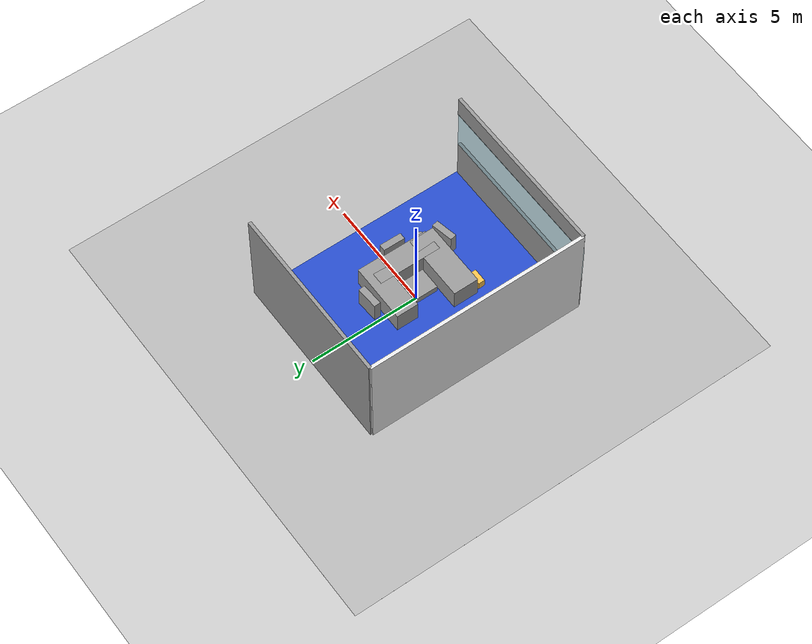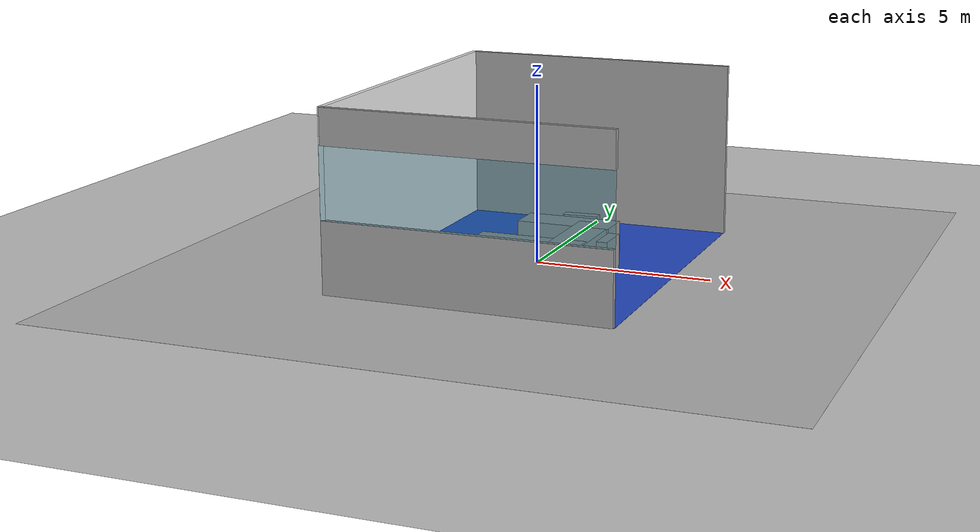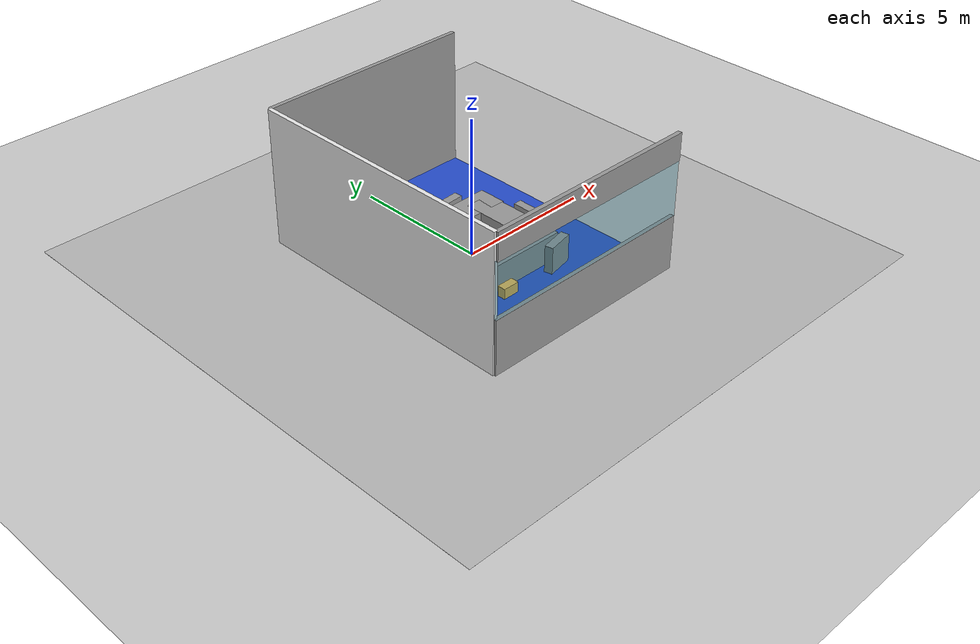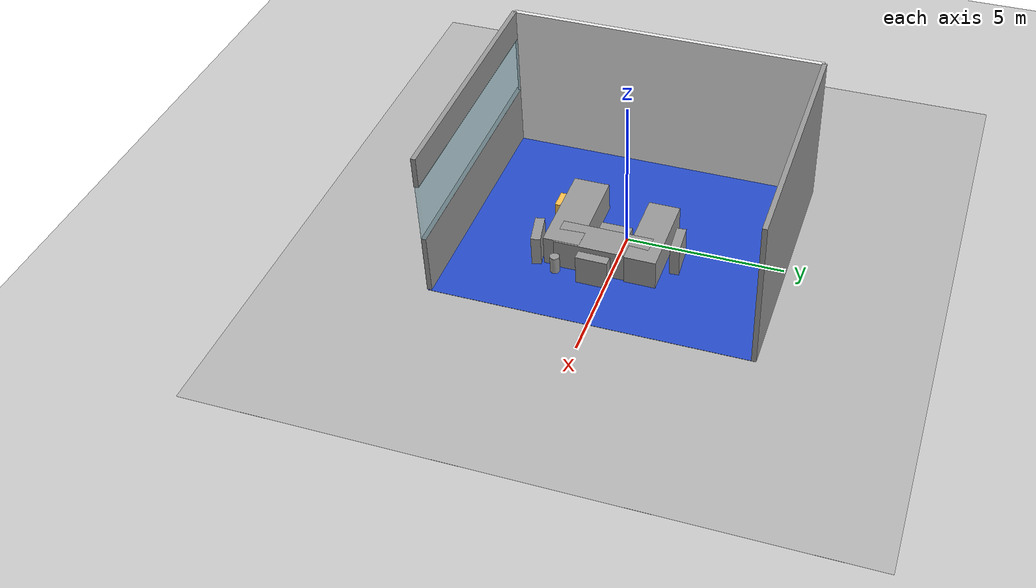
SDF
<sdf version="1.7">
 <world name="default">
  <light name="sun" type="directional">
   <pose>0 0 10 0 -0 0</pose>
   <diffuse>0.8 0.8 0.8 1</diffuse>
   <specular>0.2 0.2 0.2 1</specular>
   <attenuation>
    <range>1000</range>
    <constant>0.9</constant>
    <linear>0.01</linear>
    <quadratic>0.001</quadratic>
   </attenuation>
   <direction>-0.5 0.1 -0.9</direction>
   <spot><inner_angle>0</inner_angle><outer_angle>0</outer_angle><falloff>0</falloff></spot>
  </light>
  <model name="ground_plane">
   <static>1</static>
   <link name="link">
    <collision name="collision">
     <geometry><plane><normal>0 0 1</normal><size>7.5 8.6</size></plane></geometry>
     <surface><friction><ode><mu>100</mu><mu2>50</mu2></ode></friction></surface>
    </collision>
    <visual name="visual">
     <cast_shadows>0</cast_shadows>
     <geometry><plane><normal>0 0 1</normal><size>7.5 8.6</size></plane></geometry>
     <material>
      <script><uri>file://media/materials/scripts/gazebo.material</uri><name>Gazebo/Grey</name></script>
     </material>
    </visual>
   </link>
  </model>
  <model name="load cylinder">
   <pose>2.05519 -1.67718 0.3 0 -0 0</pose>
   <static>1</static>
   <link name="link">
    <inertial>
     <mass>4</mass>
     <inertia>
      <ixx>2.67e-05</ixx>
      <ixy>0</ixy>
      <ixz>0</ixz>
      <iyy>2.67e-05</iyy>
      <iyz>0</iyz>
      <izz>2.67e-05</izz>
     </inertia>
    </inertial>
    <collision name="m_collision">
     <geometry><cylinder><length>0.6</length><radius>0.15</radius></cylinder></geometry>
    </collision>
    <visual name="m_visual">
     <geometry><cylinder><length>0.6</length><radius>0.15</radius></cylinder></geometry>
     <material>
      <script><uri>file://media/materials/scripts/gazebo.material</uri><name>Gazebo/Grey</name></script>
     </material>
    </visual>
   </link>
  </model>
  <physics name="default_physics" default="0" type="ode">
   <ode>
    <solver>
     <type>quick</type>
     <iters>10</iters>
     <sor>1.3</sor>
     <use_dynamic_moi_rescaling>0</use_dynamic_moi_rescaling>
    </solver>
    <constraints>
     <cfm>0</cfm>
     <erp>0.2</erp>
     <contact_max_correcting_vel>100</contact_max_correcting_vel>
     <contact_surface_layer>0.001</contact_surface_layer>
    </constraints>
   </ode>
   <max_step_size>0.004</max_step_size>
   <real_time_factor>1</real_time_factor>
   <real_time_update_rate>250</real_time_update_rate>
  </physics>
  <gravity>0 0 -9.8066</gravity>
  <magnetic_field>6e-06 2.3e-05 -4.2e-05</magnetic_field>
  <atmosphere type="adiabatic"/>
  <scene><ambient>0.4 0.4 0.4 1</ambient><background>0.7 0.7 0.7 1</background><shadows>1</shadows></scene>
  <spherical_coordinates>
   <surface_model>EARTH_WGS84</surface_model>
   <latitude_deg>0</latitude_deg>
   <longitude_deg>0</longitude_deg>
   <elevation>0</elevation>
   <heading_deg>0</heading_deg>
  </spherical_coordinates>
  <model name="Box_24x15M">
   <link name="Wall">
    <pose>0 0 0.1985 0 -0 0</pose>
    <inertial>
     <mass>5</mass>
     <inertia><ixx>0.1022</ixx><iyy>0.2197</iyy><izz>0.1905</izz><ixy>0</ixy><ixz>0</ixz><iyz>0</iyz></inertia>
    </inertial>
    <collision name="Wall_Collision"><geometry><box><size>0.608 0.296 0.397</size></box></geometry></collision>
    <visual name="Wall_Visual">
     <geometry><box><size>0.608 0.296 0.397</size></box></geometry>
     <material>
      <script><uri>file://media/materials/scripts/gazebo.material</uri><name>Gazebo/Grey</name></script>
      <ambient>1 0.764706 0.305882 1</ambient>
     </material>
    </visual>
   </link>
   <static>1</static>
   <pose>-0.791814 -2.41473 0 0 -0 0</pose>
  </model>
  <model name="Floor_room">
   <link name="main">
    <pose>0 0 0.01 0 -0 0</pose>
    <collision name="main_Collision"><geometry><box><size>20 20 0.001</size></box></geometry></collision>
    <visual name="main_Visual">
     <geometry><box><size>20 20 0.001</size></box></geometry>
     <material>
      <script>
       <uri>model://Floor_room/materials/scripts</uri>
       <uri>model://Floor_room/materials/textures</uri>
       <name>floor_room</name>
      </script>
     </material>
    </visual>
   </link>
   <static>1</static>
   <pose>0.043797 -0.01325 0 0 -0 0</pose>
  </model>
  <model name="window">
   <link name="link_2">
    <pose>-3.65586 -0.020997 0.361529 0 -0 0</pose>
    <inertial>
     <mass>1</mass>
     <inertia><ixx>1</ixx><ixy>0</ixy><ixz>0</ixz><iyy>1</iyy><iyz>0</iyz><izz>1</izz></inertia>
    </inertial>
    <visual name="visual">
     <pose>0 0 0.9 0 -0 0</pose>
     <geometry><box><size>8 0.15 2</size></box></geometry>
     <material>
      <lighting>1</lighting>
      <ambient>0.1 0.5 0.6 1</ambient>
      <diffuse>0.1 0.5 0.6 1</diffuse>
      <specular>0.01 0.01 0.01 1</specular>
      <emissive>0 0 0 1</emissive>
      <shader type="pixel"><normal_map>__default__</normal_map></shader>
      <script><name>ModelPreview_13::link_2::visual_MATERIAL_</name><uri>__default__</uri></script>
     </material>
     <transparency>0.7</transparency>
    </visual>
    <collision name="collision">
     <pose>0 0 0.9 0 -0 0</pose>
     <geometry><box><size>0.8 0.15 0.8</size></box></geometry>
     <surface>
      <friction>
       <ode><mu>1</mu><mu2>1</mu2><fdir1>0 0 0</fdir1><slip1>0</slip1><slip2>0</slip2></ode>
       <torsional>
        <coefficient>1</coefficient>
        <patch_radius>0</patch_radius>
        <surface_radius>0</surface_radius>
        <use_patch_radius>1</use_patch_radius>
        <ode><slip>0</slip></ode>
       </torsional>
      </friction>
      <bounce><restitution_coefficient>0</restitution_coefficient><threshold>1e+06</threshold></bounce>
      <contact>
       <collide_without_contact>0</collide_without_contact>
       <collide_without_contact_bitmask>1</collide_without_contact_bitmask>
       <collide_bitmask>1</collide_bitmask>
       <ode>
        <soft_cfm>0</soft_cfm>
        <soft_erp>0.2</soft_erp>
        <kp>1e+13</kp>
        <kd>1</kd>
        <max_vel>0.01</max_vel>
        <min_depth>0</min_depth>
       </ode>
       <bullet>
        <split_impulse>1</split_impulse>
        <split_impulse_penetration_threshold>-0.01</split_impulse_penetration_threshold>
        <soft_cfm>0</soft_cfm>
        <soft_erp>0.2</soft_erp>
        <kp>1e+13</kp>
        <kd>1</kd>
       </bullet>
      </contact>
     </surface>
    </collision>
   </link>
   <static>1</static>
   <pose>3.62277 -4.97689 1.7565 0 -0 0</pose>
  </model>
  <model name="Box_36x15W">
   <link name="Wall">
    <pose>0 0 0.1985 0 -0 0</pose>
    <inertial>
     <mass>5</mass>
     <inertia><ixx>0.1022</ixx><iyy>0.4107</iyy><izz>0.3815</izz><ixy>0</ixy><ixz>0</ixz><iyz>0</iyz></inertia>
    </inertial>
    <visual name="Wall_Visual">
     <geometry><box><size>1 0.3 1</size></box></geometry>
     <material>
      <script><uri>file://media/materials/scripts/gazebo.material</uri><name>Gazebo/Grey</name></script>
      <ambient>1 1 1 1</ambient>
      <shader type="pixel"><normal_map>__default__</normal_map></shader>
      <diffuse>0.7 0.7 0.7 1</diffuse>
      <specular>0.01 0.01 0.01 1</specular>
      <emissive>0 0 0 1</emissive>
     </material>
    </visual>
    <collision name="Wall_Collision">
     <geometry><box><size>0.91 0.296 0.397</size></box></geometry>
     <surface>
      <friction>
       <ode><mu>1</mu><mu2>1</mu2><fdir1>0 0 0</fdir1><slip1>0</slip1><slip2>0</slip2></ode>
       <torsional>
        <coefficient>1</coefficient>
        <patch_radius>0</patch_radius>
        <surface_radius>0</surface_radius>
        <use_patch_radius>1</use_patch_radius>
        <ode><slip>0</slip></ode>
       </torsional>
      </friction>
      <bounce><restitution_coefficient>0</restitution_coefficient><threshold>1e+06</threshold></bounce>
      <contact>
       <collide_without_contact>0</collide_without_contact>
       <collide_without_contact_bitmask>1</collide_without_contact_bitmask>
       <collide_bitmask>1</collide_bitmask>
       <ode>
        <soft_cfm>0</soft_cfm>
        <soft_erp>0.2</soft_erp>
        <kp>1e+13</kp>
        <kd>1</kd>
        <max_vel>0.01</max_vel>
        <min_depth>0</min_depth>
       </ode>
       <bullet>
        <split_impulse>1</split_impulse>
        <split_impulse_penetration_threshold>-0.01</split_impulse_penetration_threshold>
        <soft_cfm>0</soft_cfm>
        <soft_erp>0.2</soft_erp>
        <kp>1e+13</kp>
        <kd>1</kd>
       </bullet>
      </contact>
     </surface>
    </collision>
   </link>
   <static>1</static>
   <pose>1.44643 -2.41493 0.315464 0 -0 0.200943</pose>
  </model>
  <model name="Box_36x15W_clone">
   <link name="Wall">
    <pose>0 0 0.1985 0 -0 0</pose>
    <inertial>
     <mass>5</mass>
     <inertia><ixx>0.1022</ixx><iyy>0.4107</iyy><izz>0.3815</izz><ixy>0</ixy><ixz>0</ixz><iyz>0</iyz></inertia>
    </inertial>
    <visual name="Wall_Visual">
     <geometry><box><size>1 0.3 1</size></box></geometry>
     <material>
      <script><uri>file://media/materials/scripts/gazebo.material</uri><name>Gazebo/Grey</name></script>
      <ambient>1 1 1 1</ambient>
      <shader type="pixel"><normal_map>__default__</normal_map></shader>
      <diffuse>0.7 0.7 0.7 1</diffuse>
      <specular>0.01 0.01 0.01 1</specular>
      <emissive>0 0 0 1</emissive>
     </material>
    </visual>
    <collision name="Wall_Collision">
     <geometry><box><size>0.91 0.296 0.397</size></box></geometry>
     <surface>
      <friction>
       <ode><mu>1</mu><mu2>1</mu2><fdir1>0 0 0</fdir1><slip1>0</slip1><slip2>0</slip2></ode>
       <torsional>
        <coefficient>1</coefficient>
        <patch_radius>0</patch_radius>
        <surface_radius>0</surface_radius>
        <use_patch_radius>1</use_patch_radius>
        <ode><slip>0</slip></ode>
       </torsional>
      </friction>
      <bounce><restitution_coefficient>0</restitution_coefficient><threshold>1e+06</threshold></bounce>
      <contact>
       <collide_without_contact>0</collide_without_contact>
       <collide_without_contact_bitmask>1</collide_without_contact_bitmask>
       <collide_bitmask>1</collide_bitmask>
       <ode>
        <soft_cfm>0</soft_cfm>
        <soft_erp>0.2</soft_erp>
        <kp>1e+13</kp>
        <kd>1</kd>
        <max_vel>0.01</max_vel>
        <min_depth>0</min_depth>
       </ode>
       <bullet>
        <split_impulse>1</split_impulse>
        <split_impulse_penetration_threshold>-0.01</split_impulse_penetration_threshold>
        <soft_cfm>0</soft_cfm>
        <soft_erp>0.2</soft_erp>
        <kp>1e+13</kp>
        <kd>1</kd>
       </bullet>
      </contact>
     </surface>
    </collision>
   </link>
   <static>1</static>
   <pose>0.302889 -0.589586 0.166003 -1.5708 0 0</pose>
  </model>
  <model name="Box_36x15W_clone_0">
   <link name="Wall">
    <pose>0 0 0.1985 0 -0 0</pose>
    <inertial>
     <mass>5</mass>
     <inertia><ixx>0.1022</ixx><iyy>0.4107</iyy><izz>0.3815</izz><ixy>0</ixy><ixz>0</ixz><iyz>0</iyz></inertia>
    </inertial>
    <visual name="Wall_Visual">
     <geometry><box><size>1 0.3 1</size></box></geometry>
     <material>
      <script><uri>file://media/materials/scripts/gazebo.material</uri><name>Gazebo/Grey</name></script>
      <ambient>1 1 1 1</ambient>
      <shader type="pixel"><normal_map>__default__</normal_map></shader>
      <diffuse>0.7 0.7 0.7 1</diffuse>
      <specular>0.01 0.01 0.01 1</specular>
      <emissive>0 0 0 1</emissive>
     </material>
    </visual>
    <collision name="Wall_Collision">
     <geometry><box><size>0.91 0.296 0.397</size></box></geometry>
     <surface>
      <friction>
       <ode><mu>1</mu><mu2>1</mu2><fdir1>0 0 0</fdir1><slip1>0</slip1><slip2>0</slip2></ode>
       <torsional>
        <coefficient>1</coefficient>
        <patch_radius>0</patch_radius>
        <surface_radius>0</surface_radius>
        <use_patch_radius>1</use_patch_radius>
        <ode><slip>0</slip></ode>
       </torsional>
      </friction>
      <bounce><restitution_coefficient>0</restitution_coefficient><threshold>1e+06</threshold></bounce>
      <contact>
       <collide_without_contact>0</collide_without_contact>
       <collide_without_contact_bitmask>1</collide_without_contact_bitmask>
       <collide_bitmask>1</collide_bitmask>
       <ode>
        <soft_cfm>0</soft_cfm>
        <soft_erp>0.2</soft_erp>
        <kp>1e+13</kp>
        <kd>1</kd>
        <max_vel>0.01</max_vel>
        <min_depth>0</min_depth>
       </ode>
       <bullet>
        <split_impulse>1</split_impulse>
        <split_impulse_penetration_threshold>-0.01</split_impulse_penetration_threshold>
        <soft_cfm>0</soft_cfm>
        <soft_erp>0.2</soft_erp>
        <kp>1e+13</kp>
        <kd>1</kd>
       </bullet>
      </contact>
     </surface>
    </collision>
   </link>
   <static>1</static>
   <pose>2.2121 -0.410866 0.315464 0 0 -1.58072</pose>
  </model>
  <model name="Box_36x15W_clone_1">
   <link name="Wall">
    <pose>0 0 0.1985 0 -0 0</pose>
    <inertial>
     <mass>5</mass>
     <inertia><ixx>0.1022</ixx><iyy>0.4107</iyy><izz>0.3815</izz><ixy>0</ixy><ixz>0</ixz><iyz>0</iyz></inertia>
    </inertial>
    <visual name="Wall_Visual">
     <geometry><box><size>1 0.3 1</size></box></geometry>
     <material>
      <script><uri>file://media/materials/scripts/gazebo.material</uri><name>Gazebo/Grey</name></script>
      <ambient>1 1 1 1</ambient>
      <shader type="pixel"><normal_map>__default__</normal_map></shader>
      <diffuse>0.7 0.7 0.7 1</diffuse>
      <specular>0.01 0.01 0.01 1</specular>
      <emissive>0 0 0 1</emissive>
     </material>
    </visual>
    <collision name="Wall_Collision">
     <geometry><box><size>0.91 0.296 0.397</size></box></geometry>
     <surface>
      <friction>
       <ode><mu>1</mu><mu2>1</mu2><fdir1>0 0 0</fdir1><slip1>0</slip1><slip2>0</slip2></ode>
       <torsional>
        <coefficient>1</coefficient>
        <patch_radius>0</patch_radius>
        <surface_radius>0</surface_radius>
        <use_patch_radius>1</use_patch_radius>
        <ode><slip>0</slip></ode>
       </torsional>
      </friction>
      <bounce><restitution_coefficient>0</restitution_coefficient><threshold>1e+06</threshold></bounce>
      <contact>
       <collide_without_contact>0</collide_without_contact>
       <collide_without_contact_bitmask>1</collide_without_contact_bitmask>
       <collide_bitmask>1</collide_bitmask>
       <ode>
        <soft_cfm>0</soft_cfm>
        <soft_erp>0.2</soft_erp>
        <kp>1e+13</kp>
        <kd>1</kd>
        <max_vel>0.01</max_vel>
        <min_depth>0</min_depth>
       </ode>
       <bullet>
        <split_impulse>1</split_impulse>
        <split_impulse_penetration_threshold>-0.01</split_impulse_penetration_threshold>
        <soft_cfm>0</soft_cfm>
        <soft_erp>0.2</soft_erp>
        <kp>1e+13</kp>
        <kd>1</kd>
       </bullet>
      </contact>
     </surface>
    </collision>
   </link>
   <static>1</static>
   <pose>0.652323 1.80419 0.315464 0 -0 0.058448</pose>
  </model>
  <model name="Workshop">
   <link name="Wall_10">
    <pose>-2.5053 2.09449 2 0 0 -1.5708</pose>
    <inertial>
     <mass>1</mass>
     <inertia><ixx>1</ixx><ixy>0</ixy><ixz>0</ixz><iyy>1</iyy><iyz>0</iyz><izz>1</izz></inertia>
    </inertial>
    <visual name="Wall_10_Visual">
     <pose>0 0 0.5 0 -0 0</pose>
     <geometry><box><size>10 0.15 5</size></box></geometry>
     <material>
      <script><uri>file://media/materials/scripts/gazebo.material</uri><name>Gazebo/White</name></script>
      <ambient>1 1 1 1</ambient>
      <shader type="pixel"><normal_map>__default__</normal_map></shader>
      <diffuse>0.7 0.7 0.7 1</diffuse>
      <specular>0.01 0.01 0.01 1</specular>
      <emissive>0 0 0 1</emissive>
     </material>
    </visual>
    <collision name="Wall_10_Collision">
     <pose>0 0 0.5 0 -0 0</pose>
     <geometry><box><size>10 0.15 1</size></box></geometry>
     <surface>
      <friction>
       <ode><mu>1</mu><mu2>1</mu2><fdir1>0 0 0</fdir1><slip1>0</slip1><slip2>0</slip2></ode>
       <torsional>
        <coefficient>1</coefficient>
        <patch_radius>0</patch_radius>
        <surface_radius>0</surface_radius>
        <use_patch_radius>1</use_patch_radius>
        <ode><slip>0</slip></ode>
       </torsional>
      </friction>
      <bounce><restitution_coefficient>0</restitution_coefficient><threshold>1e+06</threshold></bounce>
      <contact>
       <collide_without_contact>0</collide_without_contact>
       <collide_without_contact_bitmask>1</collide_without_contact_bitmask>
       <collide_bitmask>1</collide_bitmask>
       <ode>
        <soft_cfm>0</soft_cfm>
        <soft_erp>0.2</soft_erp>
        <kp>1e+13</kp>
        <kd>1</kd>
        <max_vel>0.01</max_vel>
        <min_depth>0</min_depth>
       </ode>
       <bullet>
        <split_impulse>1</split_impulse>
        <split_impulse_penetration_threshold>-0.01</split_impulse_penetration_threshold>
        <soft_cfm>0</soft_cfm>
        <soft_erp>0.2</soft_erp>
        <kp>1e+13</kp>
        <kd>1</kd>
       </bullet>
      </contact>
     </surface>
    </collision>
   </link>
   <link name="Wall_11">
    <pose>1.46131 -2.90507 0.516113 0 -0 3.14159</pose>
    <inertial>
     <inertia><ixx>0</ixx><ixy>0</ixy><ixz>0</ixz><iyy>0</iyy><iyz>0</iyz><izz>0</izz></inertia>
     <mass>0</mass>
    </inertial>
    <visual name="Wall_11_Visual">
     <pose>0 0 0.5 0 -0 0</pose>
     <geometry><box><size>8 0.15 2</size></box></geometry>
     <material>
      <script><uri>file://media/materials/scripts/gazebo.material</uri><name>Gazebo/Grey</name></script>
      <ambient>1 1 1 1</ambient>
      <shader type="pixel"><normal_map>__default__</normal_map></shader>
      <emissive>0 0 0 1</emissive>
      <diffuse>0.7 0.7 0.7 1</diffuse>
      <specular>0.01 0.01 0.01 1</specular>
     </material>
    </visual>
    <collision name="Wall_11_Collision">
     <pose>0 0 0.5 0 -0 0</pose>
     <geometry><box><size>7.71217 0.15 1</size></box></geometry>
     <surface>
      <friction>
       <ode><mu>1</mu><mu2>1</mu2><fdir1>0 0 0</fdir1><slip1>0</slip1><slip2>0</slip2></ode>
       <torsional>
        <coefficient>1</coefficient>
        <patch_radius>0</patch_radius>
        <surface_radius>0</surface_radius>
        <use_patch_radius>1</use_patch_radius>
        <ode><slip>0</slip></ode>
       </torsional>
      </friction>
      <bounce><restitution_coefficient>0</restitution_coefficient><threshold>1e+06</threshold></bounce>
      <contact>
       <collide_without_contact>0</collide_without_contact>
       <collide_without_contact_bitmask>1</collide_without_contact_bitmask>
       <collide_bitmask>1</collide_bitmask>
       <ode>
        <soft_cfm>0</soft_cfm>
        <soft_erp>0.2</soft_erp>
        <kp>1e+13</kp>
        <kd>1</kd>
        <max_vel>0.01</max_vel>
        <min_depth>0</min_depth>
       </ode>
       <bullet>
        <split_impulse>1</split_impulse>
        <split_impulse_penetration_threshold>-0.01</split_impulse_penetration_threshold>
        <soft_cfm>0</soft_cfm>
        <soft_erp>0.2</soft_erp>
        <kp>1e+13</kp>
        <kd>1</kd>
       </bullet>
      </contact>
     </surface>
    </collision>
   </link>
   <link name="Wall_11_clone">
    <pose>1.4947 -2.90551 4 0 -0 3.14159</pose>
    <inertial>
     <inertia><ixx>0</ixx><ixy>0</ixy><ixz>0</ixz><iyy>0</iyy><iyz>0</iyz><izz>0</izz></inertia>
     <mass>0</mass>
    </inertial>
    <visual name="Wall_11_Visual">
     <pose>0 0 0.5 0 -0 0</pose>
     <geometry><box><size>8 0.15 1</size></box></geometry>
     <material>
      <script><uri>file://media/materials/scripts/gazebo.material</uri><name>Gazebo/Grey</name></script>
      <ambient>1 1 1 1</ambient>
      <shader type="pixel"><normal_map>__default__</normal_map></shader>
      <emissive>0 0 0 1</emissive>
      <diffuse>0.7 0.7 0.7 1</diffuse>
      <specular>0.01 0.01 0.01 1</specular>
     </material>
    </visual>
    <collision name="Wall_11_Collision">
     <pose>0 0 0.5 0 -0 0</pose>
     <geometry><box><size>7.71217 0.15 1</size></box></geometry>
     <surface>
      <friction>
       <ode><mu>1</mu><mu2>1</mu2><fdir1>0 0 0</fdir1><slip1>0</slip1><slip2>0</slip2></ode>
       <torsional>
        <coefficient>1</coefficient>
        <patch_radius>0</patch_radius>
        <surface_radius>0</surface_radius>
        <use_patch_radius>1</use_patch_radius>
        <ode><slip>0</slip></ode>
       </torsional>
      </friction>
      <bounce><restitution_coefficient>0</restitution_coefficient><threshold>1e+06</threshold></bounce>
      <contact>
       <collide_without_contact>0</collide_without_contact>
       <collide_without_contact_bitmask>1</collide_without_contact_bitmask>
       <collide_bitmask>1</collide_bitmask>
       <ode>
        <soft_cfm>0</soft_cfm>
        <soft_erp>0.2</soft_erp>
        <kp>1e+13</kp>
        <kd>1</kd>
        <max_vel>0.01</max_vel>
        <min_depth>0</min_depth>
       </ode>
       <bullet>
        <split_impulse>1</split_impulse>
        <split_impulse_penetration_threshold>-0.01</split_impulse_penetration_threshold>
        <soft_cfm>0</soft_cfm>
        <soft_erp>0.2</soft_erp>
        <kp>1e+13</kp>
        <kd>1</kd>
       </bullet>
      </contact>
     </surface>
    </collision>
   </link>
   <link name="Wall_13">
    <pose>1.4947 7.09449 2 0 -0 3.14159</pose>
    <inertial>
     <mass>1</mass>
     <inertia><ixx>1</ixx><ixy>0</ixy><ixz>0</ixz><iyy>1</iyy><iyz>0</iyz><izz>1</izz></inertia>
    </inertial>
    <visual name="Wall_13_Visual">
     <pose>0 0 0.5 0 -0 0</pose>
     <geometry><box><size>8 0.15 5</size></box></geometry>
     <material>
      <script><uri>file://media/materials/scripts/gazebo.material</uri><name>Gazebo/Grey</name></script>
      <ambient>1 1 1 1</ambient>
      <shader type="pixel"><normal_map>__default__</normal_map></shader>
      <diffuse>0.7 0.7 0.7 1</diffuse>
      <specular>0.01 0.01 0.01 1</specular>
      <emissive>0 0 0 1</emissive>
     </material>
    </visual>
    <collision name="Wall_13_Collision">
     <pose>0 0 0.5 0 -0 0</pose>
     <geometry><box><size>4.55706 0.15 1</size></box></geometry>
     <surface>
      <friction>
       <ode><mu>1</mu><mu2>1</mu2><fdir1>0 0 0</fdir1><slip1>0</slip1><slip2>0</slip2></ode>
       <torsional>
        <coefficient>1</coefficient>
        <patch_radius>0</patch_radius>
        <surface_radius>0</surface_radius>
        <use_patch_radius>1</use_patch_radius>
        <ode><slip>0</slip></ode>
       </torsional>
      </friction>
      <bounce><restitution_coefficient>0</restitution_coefficient><threshold>1e+06</threshold></bounce>
      <contact>
       <collide_without_contact>0</collide_without_contact>
       <collide_without_contact_bitmask>1</collide_without_contact_bitmask>
       <collide_bitmask>1</collide_bitmask>
       <ode>
        <soft_cfm>0</soft_cfm>
        <soft_erp>0.2</soft_erp>
        <kp>1e+13</kp>
        <kd>1</kd>
        <max_vel>0.01</max_vel>
        <min_depth>0</min_depth>
       </ode>
       <bullet>
        <split_impulse>1</split_impulse>
        <split_impulse_penetration_threshold>-0.01</split_impulse_penetration_threshold>
        <soft_cfm>0</soft_cfm>
        <soft_erp>0.2</soft_erp>
        <kp>1e+13</kp>
        <kd>1</kd>
       </bullet>
      </contact>
     </surface>
    </collision>
   </link>
   <link name="link_0">
    <inertial>
     <mass>1</mass>
     <inertia>
      <ixx>0.166667</ixx>
      <ixy>0</ixy>
      <ixz>0</ixz>
      <iyy>0.166667</iyy>
      <iyz>0</iyz>
      <izz>0.166667</izz>
     </inertia>
    </inertial>
    <pose>1.49282 2.06191 0.012848 0 0 -1.5708</pose>
    <visual name="visual">
     <geometry><box><size>10 8 0.013</size></box></geometry>
     <material>
      <lighting>1</lighting>
      <script><uri>file://media/materials/scripts/gazebo.material</uri><name>Gazebo/Blue</name></script>
      <shader type="pixel"><normal_map>__default__</normal_map></shader>
      <ambient>0.1 0.5 0.6 1</ambient>
      <diffuse>0.1 0.5 0.6 1</diffuse>
      <specular>0.01 0.01 0.01 1</specular>
      <emissive>0 0 0 1</emissive>
     </material>
    </visual>
    <collision name="collision">
     <geometry><box><size>1 1 1</size></box></geometry>
     <surface>
      <friction>
       <ode><mu>1</mu><mu2>1</mu2><fdir1>0 0 0</fdir1><slip1>0</slip1><slip2>0</slip2></ode>
       <torsional>
        <coefficient>1</coefficient>
        <patch_radius>0</patch_radius>
        <surface_radius>0</surface_radius>
        <use_patch_radius>1</use_patch_radius>
        <ode><slip>0</slip></ode>
       </torsional>
      </friction>
      <bounce><restitution_coefficient>0</restitution_coefficient><threshold>1e+06</threshold></bounce>
      <contact>
       <collide_without_contact>0</collide_without_contact>
       <collide_without_contact_bitmask>1</collide_without_contact_bitmask>
       <collide_bitmask>1</collide_bitmask>
       <ode>
        <soft_cfm>0</soft_cfm>
        <soft_erp>0.2</soft_erp>
        <kp>1e+13</kp>
        <kd>1</kd>
        <max_vel>0.01</max_vel>
        <min_depth>0</min_depth>
       </ode>
       <bullet>
        <split_impulse>1</split_impulse>
        <split_impulse_penetration_threshold>-0.01</split_impulse_penetration_threshold>
        <soft_cfm>0</soft_cfm>
        <soft_erp>0.2</soft_erp>
        <kp>1e+13</kp>
        <kd>1</kd>
       </bullet>
      </contact>
     </surface>
    </collision>
   </link>
   <static>1</static>
   <pose>-1.4947 -2.09449 0 0 -0 0</pose>
  </model>
  <model name="unit_box">
   <pose>0.296579 -1.5469 0.510511 5.3e-05 -5.9e-05 0.000747</pose>
   <link name="link">
    <inertial>
     <mass>1</mass>
     <inertia>
      <ixx>0.166667</ixx>
      <ixy>0</ixy>
      <ixz>0</ixz>
      <iyy>0.166667</iyy>
      <iyz>0</iyz>
      <izz>0.166667</izz>
     </inertia>
    </inertial>
    <collision name="collision"><geometry><box><size>0.301935 0.114714 1</size></box></geometry></collision>
    <visual name="visual">
     <geometry><box><size>3.01935 1.14714 1</size></box></geometry>
     <material>
      <script><name>Gazebo/Grey</name><uri>file://media/materials/scripts/gazebo.material</uri></script>
     </material>
    </visual>
   </link>
  </model>
  <model name="unit_box_0">
   <pose>1.36408 -0.34174 0.510527 2e-05 0.000549 -0.002109</pose>
   <link name="link">
    <inertial>
     <mass>1</mass>
     <inertia>
      <ixx>0.166667</ixx>
      <ixy>0</ixy>
      <ixz>0</ixz>
      <iyy>0.166667</iyy>
      <iyz>0</iyz>
      <izz>0.166667</izz>
     </inertia>
    </inertial>
    <collision name="collision"><geometry><box><size>0.1 0.286748 1</size></box></geometry></collision>
    <visual name="visual">
     <geometry><box><size>1 2.86747 1</size></box></geometry>
     <material>
      <script><name>Gazebo/Grey</name><uri>file://media/materials/scripts/gazebo.material</uri></script>
     </material>
    </visual>
   </link>
  </model>
  <model name="unit_box_1">
   <pose>0.576251 0.968847 0.510494 -2.2e-05 -5e-05 -0.00367</pose>
   <link name="link">
    <inertial>
     <mass>1</mass>
     <inertia>
      <ixx>0.166667</ixx>
      <ixy>0</ixy>
      <ixz>0</ixz>
      <iyy>0.166667</iyy>
      <iyz>0</iyz>
      <izz>0.166667</izz>
     </inertia>
    </inertial>
    <collision name="collision"><geometry><box><size>0.268129 0.1 1</size></box></geometry></collision>
    <visual name="visual">
     <geometry><box><size>2.68128 1 1</size></box></geometry>
     <material>
      <script><name>Gazebo/Grey</name><uri>file://media/materials/scripts/gazebo.material</uri></script>
     </material>
    </visual>
   </link>
  </model>
 </world>
</sdf>
